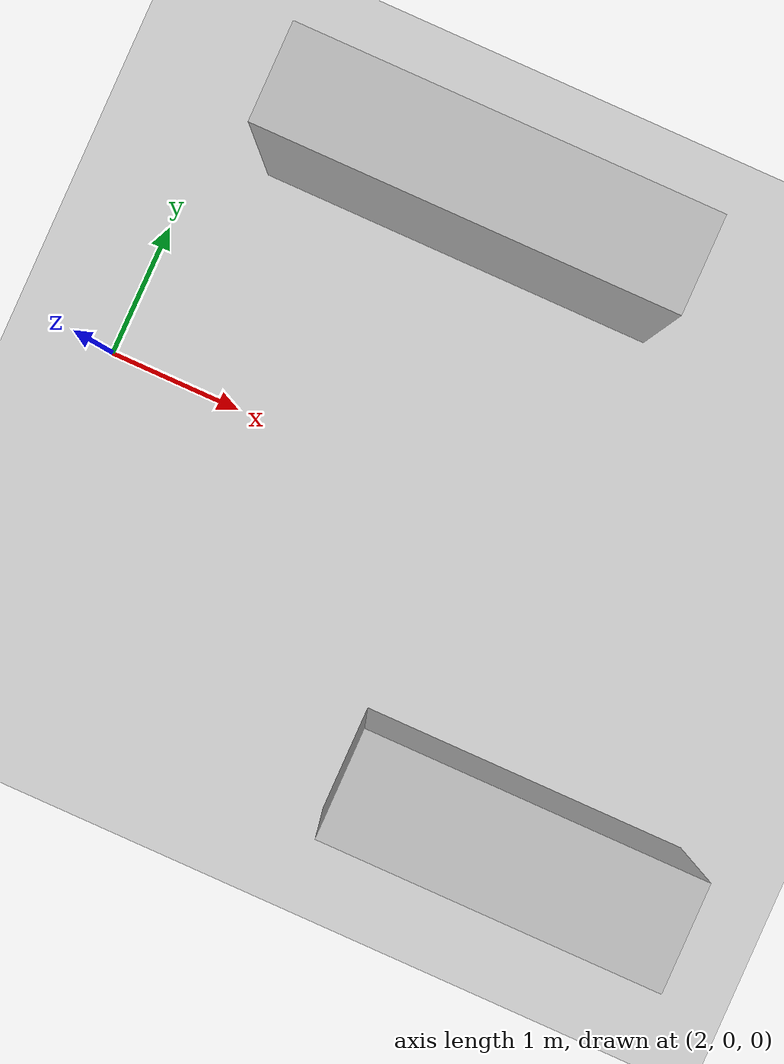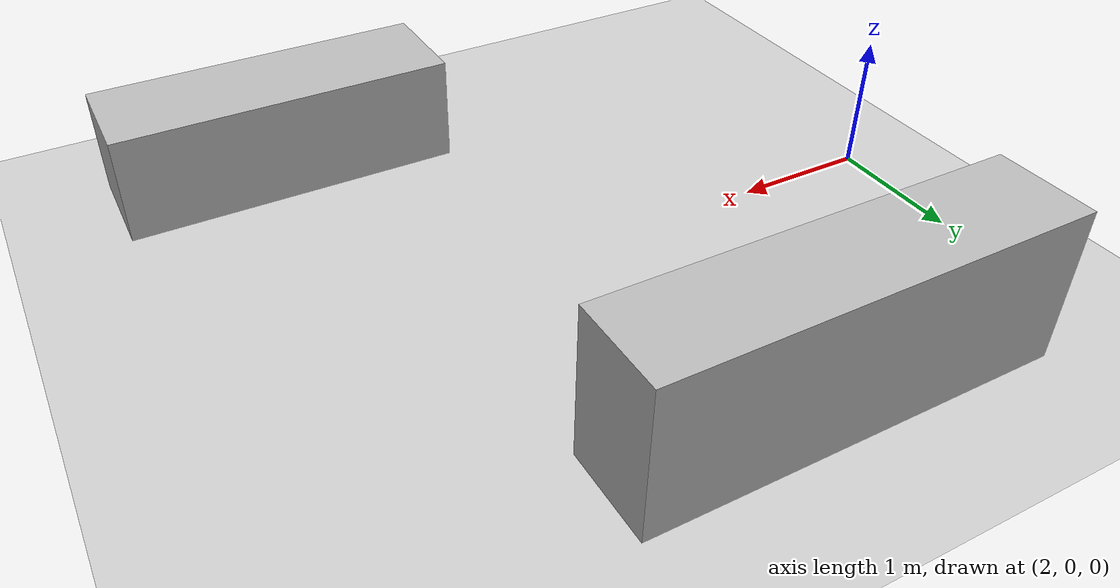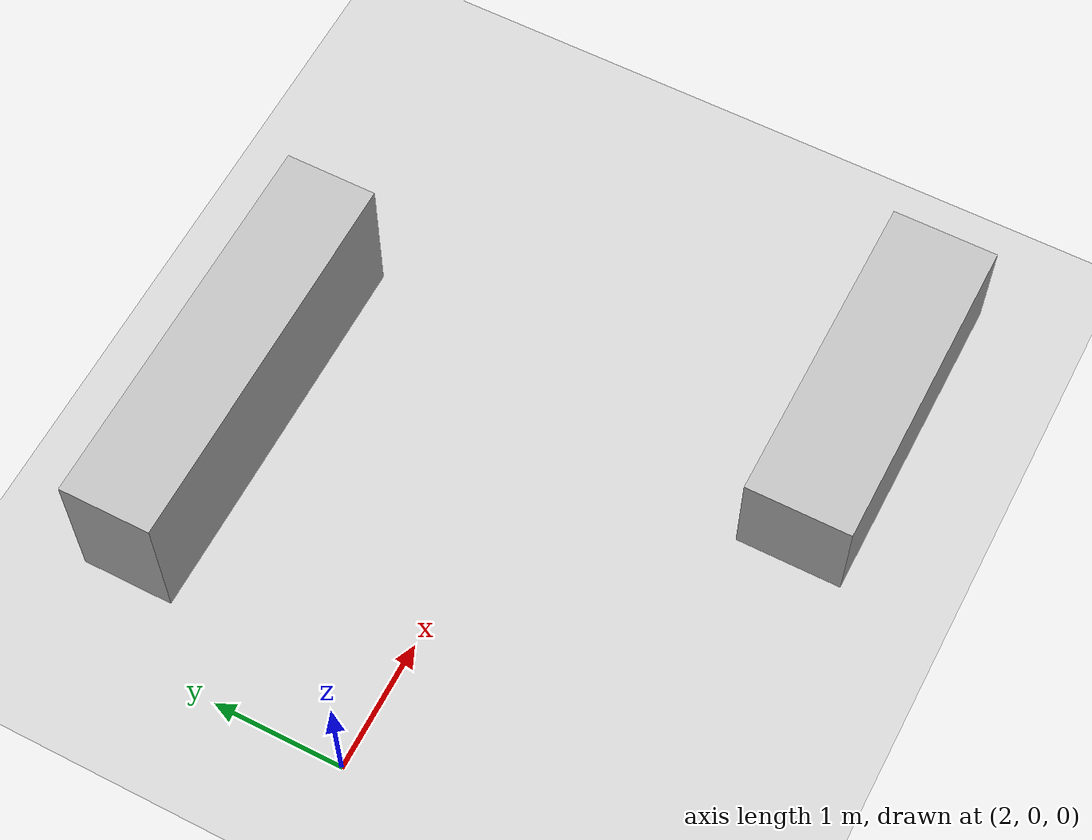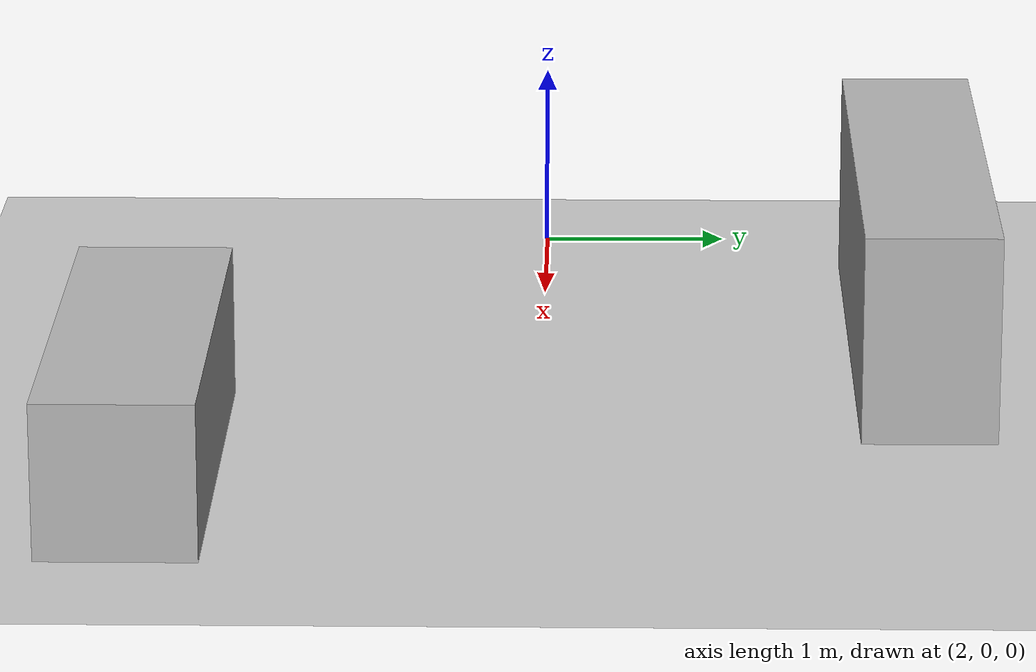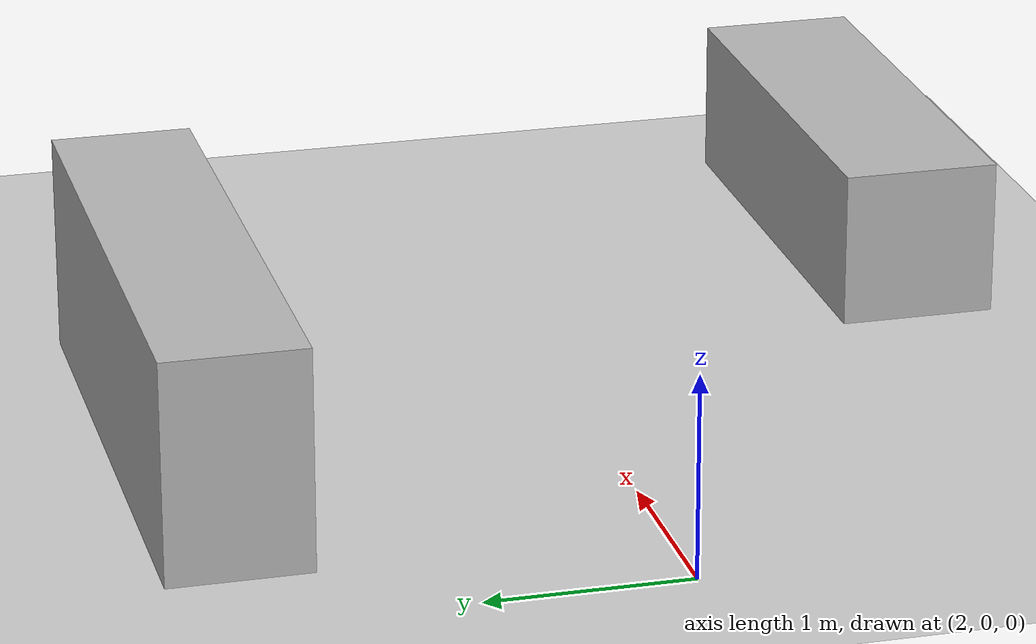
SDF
<?xml version="1.0"?>
<sdf version="1.9"><world name="hospital_reception"><plugin filename="gz-sim-physics-system" name="gz::sim::systems::Physics"/><plugin filename="gz-sim-scene-broadcaster-system" name="gz::sim::systems::SceneBroadcaster"/><include><uri>model://sun</uri></include><include><uri>model://ground_plane</uri></include><model name="reception_desk"><static>true</static><pose>4 2 0.55 0 0 0</pose><link name="link"><collision name="c"><geometry><box><size>3 0.7 1.1</size></box></geometry></collision><visual name="v"><geometry><box><size>3 0.7 1.1</size></box></geometry></visual></link></model><model name="waiting_chairs"><static>true</static><pose>6 -2 0.4 0 0 0</pose><link name="link"><collision name="c"><geometry><box><size>2.5 0.8 0.8</size></box></geometry></collision><visual name="v"><geometry><box><size>2.5 0.8 0.8</size></box></geometry></visual></link></model></world></sdf>
